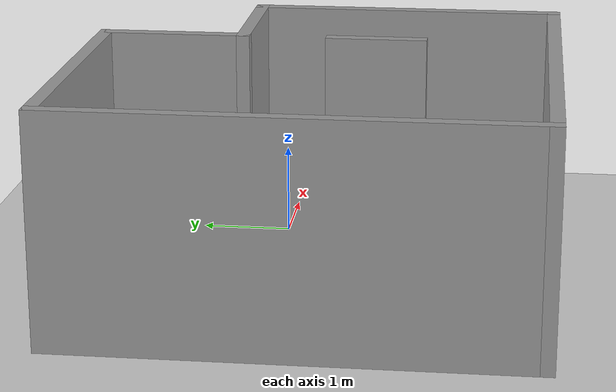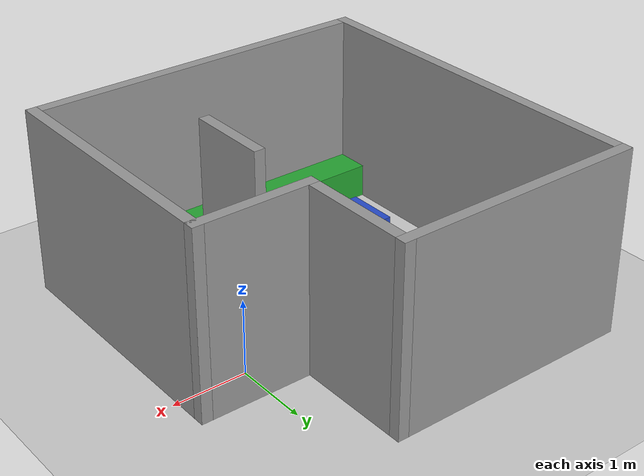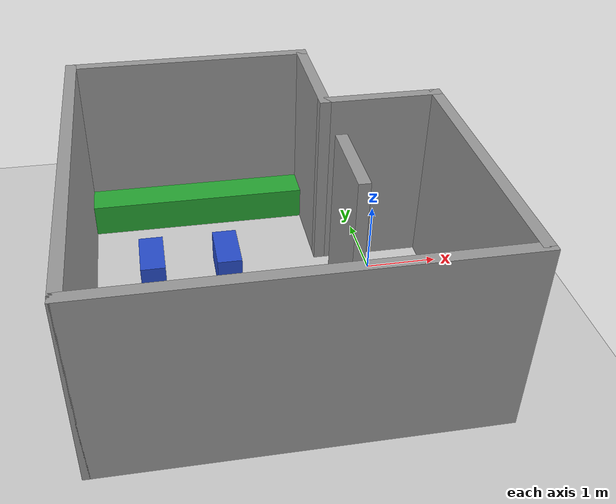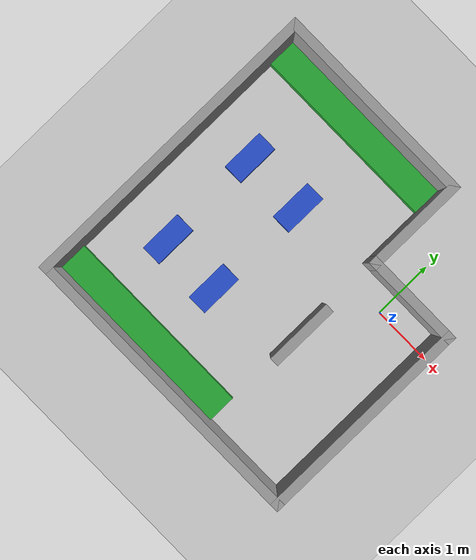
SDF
<sdf version="1.7">
 <world name="default">
  <light name="sun" type="directional">
   <pose>0 0 10 0 -0 0</pose>
   <diffuse>0.8 0.8 0.8 1</diffuse>
   <specular>0.2 0.2 0.2 1</specular>
   <attenuation>
    <range>1000</range>
    <constant>0.9</constant>
    <linear>0.01</linear>
    <quadratic>0.001</quadratic>
   </attenuation>
   <direction>-0.5 0.1 -0.9</direction>
   <spot><inner_angle>0</inner_angle><outer_angle>0</outer_angle><falloff>0</falloff></spot>
  </light>
  <model name="ground_plane">
   <static>1</static>
   <link name="link">
    <collision name="collision">
     <geometry><plane><normal>0 0 1</normal><size>100 100</size></plane></geometry>
     <surface><friction><ode><mu>100</mu><mu2>50</mu2></ode></friction></surface>
    </collision>
    <visual name="visual">
     <cast_shadows>0</cast_shadows>
     <geometry><plane><normal>0 0 1</normal><size>100 100</size></plane></geometry>
     <material>
      <script><uri>file://media/materials/scripts/gazebo.material</uri><name>Gazebo/Grey</name></script>
     </material>
    </visual>
   </link>
  </model>
  <gravity>0 0 -9.8</gravity>
  <magnetic_field>6e-06 2.3e-05 -4.2e-05</magnetic_field>
  <atmosphere type="adiabatic"/>
  <physics type="ode">
   <max_step_size>0.001</max_step_size>
   <real_time_factor>1</real_time_factor>
   <real_time_update_rate>1000</real_time_update_rate>
  </physics>
  <scene><ambient>0.4 0.4 0.4 1</ambient><background>0.7 0.7 0.7 1</background><shadows>1</shadows></scene>
  <audio><device>default</device></audio>
  <spherical_coordinates>
   <surface_model>EARTH_WGS84</surface_model>
   <latitude_deg>0</latitude_deg>
   <longitude_deg>0</longitude_deg>
   <elevation>0</elevation>
   <heading_deg>0</heading_deg>
  </spherical_coordinates>
  <model name="mart_structure">
   <pose>1.04998 -0.527447 0 0 -0 0</pose>
   <link name="Wall_0">
    <collision name="Wall_0_Collision">
     <geometry><box><size>5.15 0.15 2.5</size></box></geometry>
     <pose>0 0 1.25 0 -0 0</pose>
    </collision>
    <visual name="Wall_0_Visual">
     <pose>0 0 1.25 0 -0 0</pose>
     <geometry><box><size>5.15 0.15 2.5</size></box></geometry>
     <material>
      <script><uri>file://media/materials/scripts/gazebo.material</uri><name>Gazebo/Grey</name></script>
      <ambient>1 1 1 1</ambient>
     </material>
     <meta><layer>0</layer></meta>
    </visual>
    <pose>-4.9625 0 0 0 -0 1.5708</pose>
   </link>
   <link name="Wall_10">
    <collision name="Wall_10_Collision">
     <geometry><box><size>3.42 0.15 2.5</size></box></geometry>
     <pose>0 0 1.25 0 -0 0</pose>
    </collision>
    <visual name="Wall_10_Visual">
     <pose>0 0 1.25 0 -0 0</pose>
     <geometry><box><size>3.42 0.15 2.5</size></box></geometry>
     <material>
      <script><uri>file://media/materials/scripts/gazebo.material</uri><name>Gazebo/Grey</name></script>
      <ambient>1 1 1 1</ambient>
     </material>
     <meta><layer>0</layer></meta>
    </visual>
    <pose>-3.3275 2.5 0 0 -0 3.14159</pose>
   </link>
   <link name="Wall_12">
    <collision name="Wall_12_Collision">
     <geometry><box><size>1.12 0.15 2.5</size></box></geometry>
     <pose>0 0 1.25 0 -0 0</pose>
    </collision>
    <visual name="Wall_12_Visual">
     <pose>0 0 1.25 0 -0 0</pose>
     <geometry><box><size>1.12 0.15 2.5</size></box></geometry>
     <material>
      <script><uri>file://media/materials/scripts/gazebo.material</uri><name>Gazebo/Grey</name></script>
      <ambient>1 1 1 1</ambient>
     </material>
     <meta><layer>0</layer></meta>
    </visual>
    <pose>-1.6925 -0.545 0 0 -0 -1.5708</pose>
   </link>
   <link name="Wall_4">
    <collision name="Wall_4_Collision">
     <geometry><box><size>4.92 0.15 2.5</size></box></geometry>
     <pose>0 0 1.25 0 -0 0</pose>
    </collision>
    <visual name="Wall_4_Visual">
     <pose>0 0 1.25 0 -0 0</pose>
     <geometry><box><size>4.92 0.15 2.5</size></box></geometry>
     <material>
      <script><uri>file://media/materials/scripts/gazebo.material</uri><name>Gazebo/Grey</name></script>
      <ambient>1 1 1 1</ambient>
     </material>
     <meta><layer>0</layer></meta>
    </visual>
    <pose>-2.5775 -2.5 0 0 -0 0</pose>
   </link>
   <link name="Wall_7">
    <collision name="Wall_7_Collision">
     <geometry><box><size>3.59 0.15 2.5</size></box></geometry>
     <pose>0 0 1.25 0 -0 0</pose>
    </collision>
    <visual name="Wall_7_Visual">
     <pose>0 0 1.25 0 -0 0</pose>
     <geometry><box><size>3.59 0.15 2.5</size></box></geometry>
     <material>
      <script><uri>file://media/materials/scripts/gazebo.material</uri><name>Gazebo/Grey</name></script>
      <ambient>1 1 1 1</ambient>
     </material>
     <meta><layer>0</layer></meta>
    </visual>
    <pose>-0.1925 -0.78 0 0 -0 1.5708</pose>
   </link>
   <link name="Wall_8">
    <collision name="Wall_8_Collision">
     <geometry><box><size>1.65 0.15 2.5</size></box></geometry>
     <pose>0 0 1.25 0 -0 0</pose>
    </collision>
    <visual name="Wall_8_Visual">
     <pose>0 0 1.25 0 -0 0</pose>
     <geometry><box><size>1.65 0.15 2.5</size></box></geometry>
     <material>
      <script><uri>file://media/materials/scripts/gazebo.material</uri><name>Gazebo/Grey</name></script>
      <ambient>1 1 1 1</ambient>
     </material>
     <meta><layer>0</layer></meta>
    </visual>
    <pose>-0.9425 0.94 0 0 -0 3.14159</pose>
   </link>
   <link name="Wall_9">
    <collision name="Wall_9_Collision">
     <geometry><box><size>1.71 0.15 2.5</size></box></geometry>
     <pose>0 0 1.25 0 -0 0</pose>
    </collision>
    <visual name="Wall_9_Visual">
     <pose>0 0 1.25 0 -0 0</pose>
     <geometry><box><size>1.71 0.15 2.5</size></box></geometry>
     <material>
      <script><uri>file://media/materials/scripts/gazebo.material</uri><name>Gazebo/Grey</name></script>
      <ambient>1 1 1 1</ambient>
     </material>
     <meta><layer>0</layer></meta>
    </visual>
    <pose>-1.6925 1.72 0 0 -0 1.5708</pose>
   </link>
   <static>1</static>
  </model>
  <model name="long_green_chair">
   <static>1</static>
   <link name="link">
    <pose>0 0 0.235 0 -0 0</pose>
    <collision name="collision"><geometry><box><size>3.27 0.47 0.47</size></box></geometry></collision>
    <visual name="visual">
     <geometry><box><size>3.27 0.47 0.47</size></box></geometry>
     <material>
      <script><uri>file://media/materials/scripts/gazebo.material</uri><name>Gazebo/Green</name></script>
     </material>
    </visual>
   </link>
   <pose>-2.27285 1.66912 0 0 -0 0</pose>
  </model>
  <model name="long_green_chair_0">
   <static>1</static>
   <link name="link">
    <pose>0 0 0.235 0 -0 0</pose>
    <collision name="collision"><geometry><box><size>3.27 0.47 0.47</size></box></geometry></collision>
    <visual name="visual">
     <geometry><box><size>3.27 0.47 0.47</size></box></geometry>
     <material>
      <script><uri>file://media/materials/scripts/gazebo.material</uri><name>Gazebo/Green</name></script>
     </material>
    </visual>
   </link>
   <pose>-2.26658 -2.72449 0 0 -0 0</pose>
  </model>
  <model name="blue_shelf">
   <static>1</static>
   <link name="link">
    <pose>0 0 0.225 0 -0 0</pose>
    <collision name="collision"><geometry><box><size>0.34 0.72 0.45</size></box></geometry></collision>
    <visual name="visual">
     <geometry><box><size>0.34 0.72 0.45</size></box></geometry>
     <material>
      <script><uri>file://media/materials/scripts/gazebo.material</uri><name>Gazebo/Blue</name></script>
     </material>
    </visual>
   </link>
   <pose>-3.0465 0.225498 0 0 -0 0</pose>
  </model>
  <model name="blue_shelf_0">
   <static>1</static>
   <link name="link">
    <pose>0 0 0.225 0 -0 0</pose>
    <collision name="collision"><geometry><box><size>0.34 0.72 0.45</size></box></geometry></collision>
    <visual name="visual">
     <geometry><box><size>0.34 0.72 0.45</size></box></geometry>
     <material>
      <script><uri>file://media/materials/scripts/gazebo.material</uri><name>Gazebo/Blue</name></script>
     </material>
    </visual>
   </link>
   <pose>-3.02996 -1.51404 0 0 -0 0</pose>
  </model>
  <model name="blue_shelf_1">
   <static>1</static>
   <link name="link">
    <pose>0 0 0.225 0 -0 0</pose>
    <collision name="collision"><geometry><box><size>0.34 0.72 0.45</size></box></geometry></collision>
    <visual name="visual">
     <geometry><box><size>0.34 0.72 0.45</size></box></geometry>
     <material>
      <script><uri>file://media/materials/scripts/gazebo.material</uri><name>Gazebo/Blue</name></script>
     </material>
    </visual>
   </link>
   <pose>-2.01697 -1.53754 0 0 -0 0</pose>
  </model>
  <model name="blue_shelf_2">
   <static>1</static>
   <link name="link">
    <pose>0 0 0.225 0 -0 0</pose>
    <collision name="collision"><geometry><box><size>0.34 0.72 0.45</size></box></geometry></collision>
    <visual name="visual">
     <geometry><box><size>0.34 0.72 0.45</size></box></geometry>
     <material>
      <script><uri>file://media/materials/scripts/gazebo.material</uri><name>Gazebo/Blue</name></script>
     </material>
    </visual>
   </link>
   <pose>-2.00096 0.219695 0 0 -0 0</pose>
  </model>
 </world>
</sdf>
